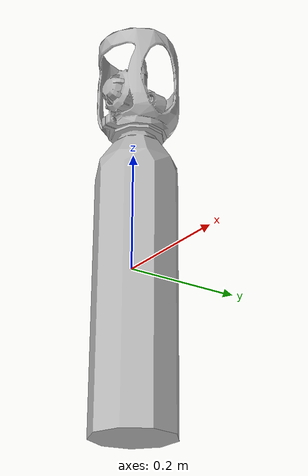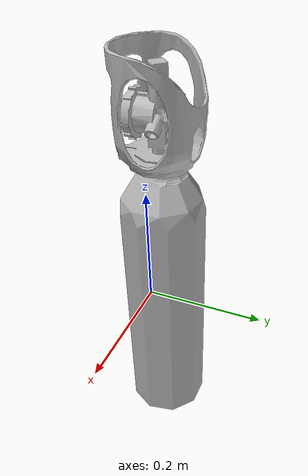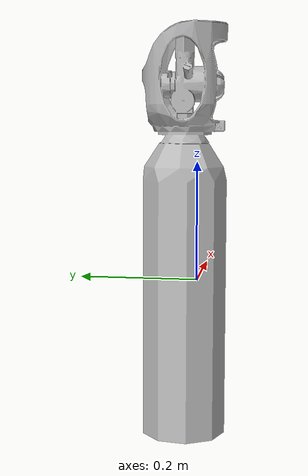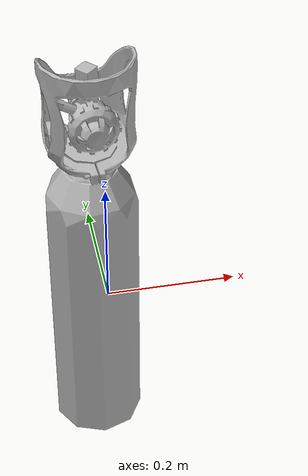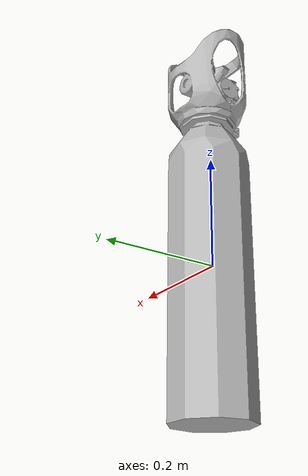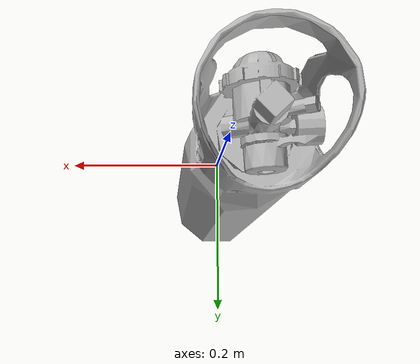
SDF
<?xml version="1.0" ?>
<sdf version="1.6">
  <model name="Industrial Fire Extinguisher">
    <static>true</static>
    <link name="link">
      <visual name="visual">
        <geometry>
          <mesh>
            <uri>model://Industrial Fire Extinguisher/meshes/Industrial_Fire_Extinguisher.obj</uri>
          </mesh>
        </geometry>
      </visual>
      <collision name="collision">
        <geometry>
          <mesh>
            <uri>model://Industrial Fire Extinguisher/meshes/Industrial_Fire_Extinguisher.obj</uri>
          </mesh>
        </geometry>
      </collision>
    </link>
  </model>
</sdf>
